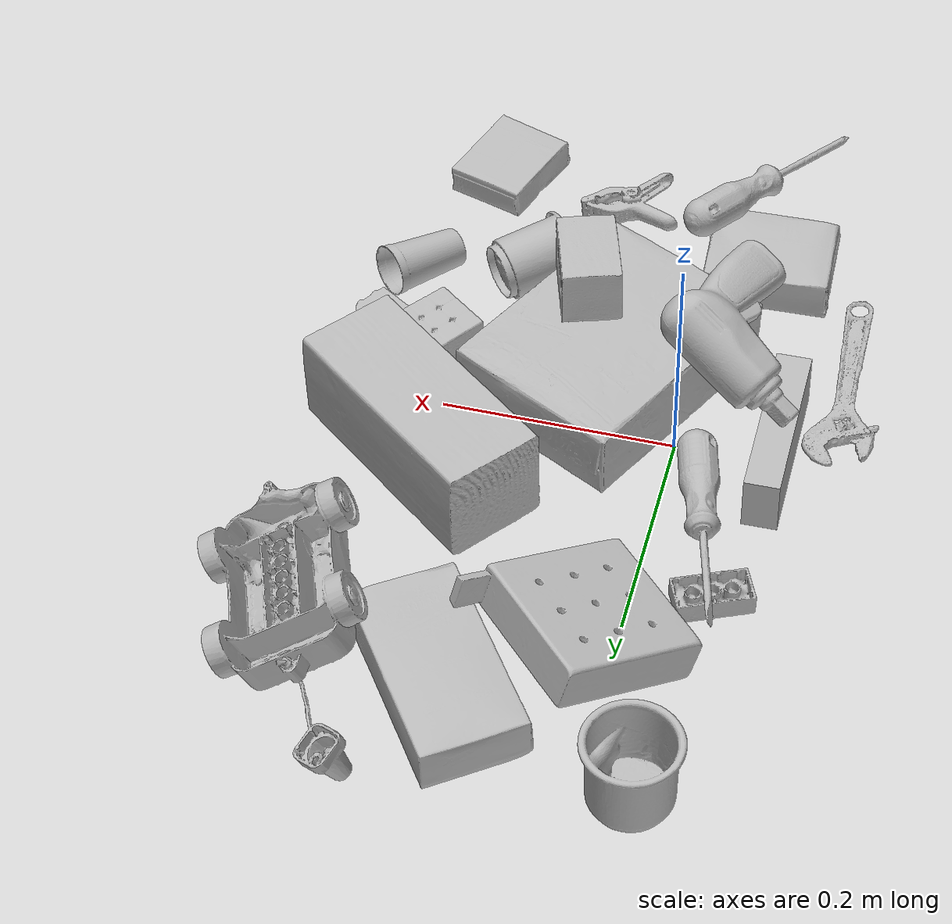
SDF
<sdf version="1.4">
  <world name="default">
    <light name="light1" type="point">
      <pose>0 0 1 0 0 0</pose>
      <diffuse>3 3 3 1</diffuse>
      <specular>3 3 3 1</specular>
    </light>
    <light name="light2" type="point">
      <pose>0 0.5 2 0 0 0</pose>
      <diffuse>1 1 1 1</diffuse>
      <specular>1 1 1 1</specular>
    </light>
    <light name="light3" type="point">
      <pose>0 0.5 2 0 0 0</pose>
      <diffuse>3 3 3 1</diffuse>
      <specular>3 3 3 1</specular>
    </light>
    <scene>
      <ambient>0.7 0.7 0.7</ambient>
    </scene>
    <model name="box21">
      <link name="link_box21">
        <collision name="default">
          <geometry>
            <mesh>
              <uri>model://cracker_box/collision_meshes/collision.obj</uri>
              <scale>1.0 1.0 1.0</scale>
            </mesh>
          </geometry>
          <surface>
            <friction>
              <ode>
                <mu>0.5</mu>
                <mu2>0.5</mu2>
              </ode>
            </friction>
          <contact>
        <ode>
            <max_vel>0</max_vel>
            <min_depth>0.0001</min_depth>
            <kp>1e8</kp>
        </ode>
    </contact></surface>
        </collision>
        <visual name="default">
          <geometry>
            <mesh>
              <uri>model://cracker_box/visual_meshes/visual.dae</uri>
              <scale>1.0 1.0 1.0</scale>
            </mesh>
          </geometry>
        </visual>
        <inertial>
          <mass>2.967785358428955</mass>
          <pose>0.0009464151808060706 0.00025434247800149024 -0.0017029535956680775 -0.0003162076618733006 -0.011106490531610344 0.00254679570085012</pose>
          <inertia>
            <ixx>0.0075487206</ixx>
            <iyy>0.012464421</iyy>
            <izz>0.017787872</izz>
            <ixy>0</ixy>
            <ixz>0</ixz>
            <iyz>0</iyz>
          </inertia>
        </inertial>
      </link>
      <pose>0.06975141912698746 -0.05771707743406296 0.03553275763988495 3.1371189800566577 -0.016562110906510403 1.1086057287064</pose>
    </model>
    <model name="box22">
      <link name="link_box22">
        <collision name="default">
          <geometry>
            <mesh>
              <uri>model://rubiks_cube/collision_meshes/collision.obj</uri>
              <scale>1.0 1.0 1.0</scale>
            </mesh>
          </geometry>
          <surface>
            <friction>
              <ode>
                <mu>0.5</mu>
                <mu2>0.5</mu2>
              </ode>
            </friction>
          <contact>
        <ode>
            <max_vel>0</max_vel>
            <min_depth>0.0001</min_depth>
            <kp>1e8</kp>
        </ode>
    </contact></surface>
        </collision>
        <visual name="default">
          <geometry>
            <mesh>
              <uri>model://rubiks_cube/visual_meshes/visual.dae</uri>
              <scale>1.0 1.0 1.0</scale>
            </mesh>
          </geometry>
        </visual>
        <inertial>
          <mass>0.2631562352180481</mass>
          <pose>2.6721041649580002e-05 5.2569666877388954e-05 -7.264316082000732e-06 -0.05467275409565722 -0.09814109117242276 -0.03445701547045584</pose>
          <inertia>
            <ixx>0.0001454115</ixx>
            <iyy>0.00014473335</iyy>
            <izz>0.00014661645</izz>
            <ixy>0</ixy>
            <ixz>0</ixz>
            <iyz>0</iyz>
          </inertia>
        </inertial>
      </link>
      <pose>0.2154398113489151 -0.04361136630177498 0.0292618777602911 1.25146319491607 1.5373783713494296 -2.519639451094781</pose>
    </model>
    <model name="box23">
      <link name="link_box23">
        <collision name="default">
          <geometry>
            <mesh>
              <uri>model://pudding_box/collision_meshes/collision.obj</uri>
              <scale>1.0 1.0 1.0</scale>
            </mesh>
          </geometry>
          <surface>
            <friction>
              <ode>
                <mu>0.5</mu>
                <mu2>0.5</mu2>
              </ode>
            </friction>
          <contact>
        <ode>
            <max_vel>0</max_vel>
            <min_depth>0.0001</min_depth>
            <kp>1e8</kp>
        </ode>
    </contact></surface>
        </collision>
        <visual name="default">
          <geometry>
            <mesh>
              <uri>model://pudding_box/visual_meshes/visual.dae</uri>
              <scale>1.0 1.0 1.0</scale>
            </mesh>
          </geometry>
        </visual>
        <inertial>
          <mass>0.41353368759155273</mass>
          <pose>0.0004894821904599667 0.0008067885646596551 -0.0005188827635720372 0.005213101814074476 -0.006603797777454713 0.020079821436089117</pose>
          <inertia>
            <ixx>0.0004674785</ixx>
            <iyy>0.00031452288</iyy>
            <izz>0.0006903542</izz>
            <ixy>0</ixy>
            <ixz>0</ixz>
            <iyz>0</iyz>
          </inertia>
        </inertial>
      </link>
      <pose>-0.03895643725991249 -0.2201014906167984 0.018686026334762573 -3.1415916652684324 6.23882875554944e-06 -1.52204694162889</pose>
    </model>
    <model name="cup1">
      <link name="link_cup1">
        <collision name="default">
          <geometry>
            <mesh>
              <uri>model://cup_small/collision_meshes/collision.obj</uri>
              <scale>1.0 1.0 1.0</scale>
            </mesh>
          </geometry>
          <surface>
            <friction>
              <ode>
                <mu>0.5</mu>
                <mu2>0.5</mu2>
              </ode>
            </friction>
          <contact>
        <ode>
            <max_vel>0</max_vel>
            <min_depth>0.0001</min_depth>
            <kp>1e8</kp>
        </ode>
    </contact></surface>
        </collision>
        <visual name="default">
          <geometry>
            <mesh>
              <uri>model://cup_small/visual_meshes/visual.dae</uri>
              <scale>1.0 1.0 1.0</scale>
            </mesh>
          </geometry>
        </visual>
        <inertial>
          <mass>0.02095564641058445</mass>
          <pose>0.00010482477955520153 -0.0003377848770469427 -0.01074282731860876 -0.011492722259696445 -0.015280529703091471 -0.5058449819350237</pose>
          <inertia>
            <ixx>1.2338362e-05</ixx>
            <iyy>1.240201e-05</iyy>
            <izz>5.5708097e-06</izz>
            <ixy>0</ixy>
            <ixz>0</ixz>
            <iyz>0</iyz>
          </inertia>
        </inertial>
      </link>
      <pose>0.25858309864997864 -0.14913620054721832 0.020075052976608276 1.4134645802751797 0.9854733107270283 2.2532551359875153</pose>
    </model>
    <model name="cup2">
      <link name="link_cup2">
        <collision name="default">
          <geometry>
            <mesh>
              <uri>model://c_cups/collision_meshes/collision.obj</uri>
              <scale>1.0 1.0 1.0</scale>
            </mesh>
          </geometry>
          <surface>
            <friction>
              <ode>
                <mu>0.5</mu>
                <mu2>0.5</mu2>
              </ode>
            </friction>
          <contact>
        <ode>
            <max_vel>0</max_vel>
            <min_depth>0.0001</min_depth>
            <kp>1e8</kp>
        </ode>
    </contact></surface>
        </collision>
        <visual name="default">
          <geometry>
            <mesh>
              <uri>model://c_cups/visual_meshes/visual.dae</uri>
              <scale>1.0 1.0 1.0</scale>
            </mesh>
          </geometry>
        </visual>
        <inertial>
          <mass>0.04905003309249878</mass>
          <pose>0.0007237255922518671 0.0020153908990323544 -0.0012750986497849226 0.30215813246853196 0.013461388587527759 -0.08771773533446486</pose>
          <inertia>
            <ixx>3.6477843e-05</ixx>
            <iyy>3.583322e-05</iyy>
            <izz>3.225985e-05</izz>
            <ixy>0</ixy>
            <ixz>0</ixz>
            <iyz>0</iyz>
          </inertia>
        </inertial>
      </link>
      <pose>0.1628287434577942 -0.1617611199617386 0.029974771663546562 -1.4865494016861716 -0.0033447693080828744 2.274249643022983</pose>
    </model>
    <model name="box11">
      <link name="link_box11">
        <collision name="default">
          <geometry>
            <mesh>
              <uri>model://sugar_box/collision_meshes/collision.obj</uri>
              <scale>1.0 1.0 1.0</scale>
            </mesh>
          </geometry>
          <surface>
            <friction>
              <ode>
                <mu>0.5</mu>
                <mu2>0.5</mu2>
              </ode>
            </friction>
          <contact>
        <ode>
            <max_vel>0</max_vel>
            <min_depth>0.0001</min_depth>
            <kp>1e8</kp>
        </ode>
    </contact></surface>
        </collision>
        <visual name="default">
          <geometry>
            <mesh>
              <uri>model://sugar_box/visual_meshes/visual.dae</uri>
              <scale>1.0 1.0 1.0</scale>
            </mesh>
          </geometry>
        </visual>
        <inertial>
          <mass>0.9405714869499207</mass>
          <pose>0.0010343727190047503 3.849109634757042e-05 -0.0003636480832938105 -0.00040462618385709627 0.0010506635220579009 0.0026153790218148127</pose>
          <inertia>
            <ixx>0.0007836817</ixx>
            <iyy>0.0025330195</iyy>
            <izz>0.0030323272</izz>
            <ixy>0</ixy>
            <ixz>0</ixz>
            <iyz>0</iyz>
          </inertia>
        </inertial>
      </link>
      <pose>0.12369236350059509 0.29420286417007446 0.02279862016439438 0.0007694120541596496 -0.023430865247369485 2.1721467317502565</pose>
    </model>
    <model name="box12">
      <link name="link_box12">
        <collision name="default">
          <geometry>
            <mesh>
              <uri>model://jenga/collision_meshes/collision.obj</uri>
              <scale>1.0 1.0 1.0</scale>
            </mesh>
          </geometry>
          <surface>
            <friction>
              <ode>
                <mu>0.5</mu>
                <mu2>0.5</mu2>
              </ode>
            </friction>
          <contact>
        <ode>
            <max_vel>0</max_vel>
            <min_depth>0.0001</min_depth>
            <kp>1e8</kp>
        </ode>
    </contact></surface>
        </collision>
        <visual name="default">
          <geometry>
            <mesh>
              <uri>model://jenga/visual_meshes/visual.dae</uri>
              <scale>1.0 1.0 1.0</scale>
            </mesh>
          </geometry>
        </visual>
        <inertial>
          <mass>0.2285791039466858</mass>
          <pose>-2.502855807051674e-07 -0.00010250010382151231 -4.0923405322246253e-05 0.0 -7.342155186052628e-07 0.0</pose>
          <inertia>
            <ixx>6.3253385e-05</ixx>
            <iyy>0.00042860323</iyy>
            <izz>0.00045757034</izz>
            <ixy>0</ixy>
            <ixz>0</ixz>
            <iyz>0</iyz>
          </inertia>
        </inertial>
      </link>
      <pose>-0.08444521576166153 -0.005144641734659672 0.024702012538909912 1.5774807488874019 -5.5982210500392e-07 1.5758949070483297</pose>
    </model>
    <model name="box13">
      <link name="link_box13">
        <collision name="default">
          <geometry>
            <mesh>
              <uri>model://wood_block/collision_meshes/collision.obj</uri>
              <scale>1.0 1.0 1.0</scale>
            </mesh>
          </geometry>
          <surface>
            <friction>
              <ode>
                <mu>0.5</mu>
                <mu2>0.5</mu2>
              </ode>
            </friction>
          <contact>
        <ode>
            <max_vel>0</max_vel>
            <min_depth>0.0001</min_depth>
            <kp>1e8</kp>
        </ode>
    </contact></surface>
        </collision>
        <visual name="default">
          <geometry>
            <mesh>
              <uri>model://wood_block/visual_meshes/visual.dae</uri>
              <scale>1.0 1.0 1.0</scale>
            </mesh>
          </geometry>
        </visual>
        <inertial>
          <mass>1.608048677444458</mass>
          <pose>-5.813315056002466e-06 -0.000570809468626976 0.0002640858292579651 -0.05220975529066727 -0.005192695547513155 -0.006861377927637377</pose>
          <inertia>
            <ixx>0.002151813</ixx>
            <iyy>0.006797577</iyy>
            <izz>0.0067721503</izz>
            <ixy>0</ixy>
            <ixz>0</ixz>
            <iyz>0</iyz>
          </inertia>
        </inertial>
      </link>
      <pose>0.20067842304706573 0.06538771837949753 0.04570065438747406 1.5681308273434404 -0.006938944006506552 2.478812984694253</pose>
    </model>
    <model name="box14">
      <link name="link_box14">
        <collision name="default">
          <geometry>
            <mesh>
              <uri>model://gelatin_box/collision_meshes/collision.obj</uri>
              <scale>1.0 1.0 1.0</scale>
            </mesh>
          </geometry>
          <surface>
            <friction>
              <ode>
                <mu>0.5</mu>
                <mu2>0.5</mu2>
              </ode>
            </friction>
          <contact>
        <ode>
            <max_vel>0</max_vel>
            <min_depth>0.0001</min_depth>
            <kp>1e8</kp>
        </ode>
    </contact></surface>
        </collision>
        <visual name="default">
          <geometry>
            <mesh>
              <uri>model://gelatin_box/visual_meshes/visual.dae</uri>
              <scale>1.0 1.0 1.0</scale>
            </mesh>
          </geometry>
        </visual>
        <inertial>
          <mass>0.228233203291893</mass>
          <pose>0.0004319618456065655 0.00011156871914863586 -0.0003640321083366871 -0.0010503721031013481 -0.004755817754301117 0.016440566922732165</pose>
          <inertia>
            <ixx>0.000161114</ixx>
            <iyy>0.0001150829</iyy>
            <izz>0.0002452514</izz>
            <ixy>0</ixy>
            <ixz>0</ixz>
            <iyz>0</iyz>
          </inertia>
        </inertial>
      </link>
      <pose>0.21527886390686035 -0.2921941578388214 0.014580639079213142 -3.1258657170764774 -0.025719255565556466 2.8136845531879864</pose>
    </model>
    <model name="cup15">
      <link name="link_cup15">
        <collision name="default">
          <geometry>
            <mesh>
              <uri>model://f_cups/collision_meshes/collision.obj</uri>
              <scale>1.0 1.0 1.0</scale>
            </mesh>
          </geometry>
          <surface>
            <friction>
              <ode>
                <mu>0.5</mu>
                <mu2>0.5</mu2>
              </ode>
            </friction>
          <contact>
        <ode>
            <max_vel>0</max_vel>
            <min_depth>0.0001</min_depth>
            <kp>1e8</kp>
        </ode>
    </contact></surface>
        </collision>
        <visual name="default">
          <geometry>
            <mesh>
              <uri>model://f_cups/visual_meshes/visual.dae</uri>
              <scale>1.0 1.0 1.0</scale>
            </mesh>
          </geometry>
        </visual>
        <inertial>
          <mass>0.05267045274376869</mass>
          <pose>-0.003171468386426568 -0.0006240073125809431 -0.003655537962913513 0.7862325736201227 -0.2607934836260618 -0.18237270236977254</pose>
          <inertia>
            <ixx>4.9511644e-05</ixx>
            <iyy>5.193826e-05</iyy>
            <izz>5.4069198e-05</izz>
            <ixy>0</ixy>
            <ixz>0</ixz>
            <iyz>0</iyz>
          </inertia>
        </inertial>
      </link>
      <pose>-0.04269453510642052 0.3596073389053345 0.03630601987242699 8.218082234268862e-08 3.7504615025054856e-07 2.828220909529068</pose>
    </model>
    <model name="toy1">
      <link name="link_toy1">
        <collision name="default">
          <geometry>
            <mesh>
              <uri>model://g_lego_duplo/collision_meshes/collision.obj</uri>
              <scale>1.0 1.0 1.0</scale>
            </mesh>
          </geometry>
          <surface>
            <friction>
              <ode>
                <mu>0.5</mu>
                <mu2>0.5</mu2>
              </ode>
            </friction>
          <contact>
        <ode>
            <max_vel>0</max_vel>
            <min_depth>0.0001</min_depth>
            <kp>1e8</kp>
        </ode>
    </contact></surface>
        </collision>
        <visual name="default">
          <geometry>
            <mesh>
              <uri>model://g_lego_duplo/visual_meshes/visual.dae</uri>
              <scale>1.0 1.0 1.0</scale>
            </mesh>
          </geometry>
        </visual>
        <inertial>
          <mass>0.5557854771614075</mass>
          <pose>-0.050047677010297775 0.0017554635414853692 0.0038806761149317026 0.01096300832625367 0.038108254431045284 -0.0965302354071939</pose>
          <inertia>
            <ixx>0.0008053398</ixx>
            <iyy>0.0024348022</iyy>
            <izz>0.003046027</izz>
            <ixy>0</ixy>
            <ixz>0</ixz>
            <iyz>0</iyz>
          </inertia>
        </inertial>
      </link>
      <pose>0.2341281771659851 0.3061635494232178 0.043272972106933594 -2.6720199112340857 -1.1936489976314808e-05 1.9299484704240357</pose>
    </model>
    <model name="toy2">
      <link name="link_toy2">
        <collision name="default">
          <geometry>
            <mesh>
              <uri>model://b_toy_airplane/collision_meshes/collision.obj</uri>
              <scale>1.0 1.0 1.0</scale>
            </mesh>
          </geometry>
          <surface>
            <friction>
              <ode>
                <mu>0.5</mu>
                <mu2>0.5</mu2>
              </ode>
            </friction>
          <contact>
        <ode>
            <max_vel>0</max_vel>
            <min_depth>0.0001</min_depth>
            <kp>1e8</kp>
        </ode>
    </contact></surface>
        </collision>
        <visual name="default">
          <geometry>
            <mesh>
              <uri>model://b_toy_airplane/visual_meshes/visual.dae</uri>
              <scale>1.0 1.0 1.0</scale>
            </mesh>
          </geometry>
        </visual>
        <inertial>
          <mass>0.5134223699569702</mass>
          <pose>0.00508136348798871 0.004015584941953421 0.009543065913021564 -0.0400181167848636 -0.04022184003740235 -0.5601502230799963</pose>
          <inertia>
            <ixx>0.00095317804</ixx>
            <iyy>0.00038099466</iyy>
            <izz>0.0011858484</izz>
            <ixy>0</ixy>
            <ixz>0</ixz>
            <iyz>0</iyz>
          </inertia>
        </inertial>
      </link>
      <pose>-0.030978869646787643 -0.06403281539678574 0.1003599688410759 2.9836905375886893 0.4096653527900015 2.689325971332117</pose>
    </model>
    <model name="toy3">
      <link name="link_toy3">
        <collision name="default">
          <geometry>
            <mesh>
              <uri>model://foam_brick/collision_meshes/collision.obj</uri>
              <scale>1.0 1.0 1.0</scale>
            </mesh>
          </geometry>
          <surface>
            <friction>
              <ode>
                <mu>0.5</mu>
                <mu2>0.5</mu2>
              </ode>
            </friction>
          <contact>
        <ode>
            <max_vel>0</max_vel>
            <min_depth>0.0001</min_depth>
            <kp>1e8</kp>
        </ode>
    </contact></surface>
        </collision>
        <visual name="default">
          <geometry>
            <mesh>
              <uri>model://foam_brick/visual_meshes/visual.dae</uri>
              <scale>1.0 1.0 1.0</scale>
            </mesh>
          </geometry>
        </visual>
        <inertial>
          <mass>0.10737738013267517</mass>
          <pose>-0.0002522472059354186 0.00034584314562380314 -0.0002532101352699101 -0.29401713280371045 0.01727443708188723 -0.0007449863066790336</pose>
          <inertia>
            <ixx>4.6904443e-05</ixx>
            <iyy>7.488536e-05</iyy>
            <izz>7.583706e-05</izz>
            <ixy>0</ixy>
            <ixz>0</ixz>
            <iyz>0</iyz>
          </inertia>
        </inertial>
      </link>
      <pose>0.0972473993897438 -0.09426780045032501 0.09712384641170502 -1.5737637785590686 0.011226631837081393 -1.266193689155993</pose>
    </model>
    <model name="toy4">
      <link name="link_toy4">
        <collision name="default">
          <geometry>
            <mesh>
              <uri>model://c_lego_duplo/collision_meshes/collision.obj</uri>
              <scale>1.0 1.0 1.0</scale>
            </mesh>
          </geometry>
          <surface>
            <friction>
              <ode>
                <mu>0.5</mu>
                <mu2>0.5</mu2>
              </ode>
            </friction>
          <contact>
        <ode>
            <max_vel>0</max_vel>
            <min_depth>0.0001</min_depth>
            <kp>1e8</kp>
        </ode>
    </contact></surface>
        </collision>
        <visual name="default">
          <geometry>
            <mesh>
              <uri>model://c_lego_duplo/visual_meshes/visual.dae</uri>
              <scale>1.0 1.0 1.0</scale>
            </mesh>
          </geometry>
        </visual>
        <inertial>
          <mass>0.0418582409620285</mass>
          <pose>0.00031645974377170205 0.00019464627257548273 0.0010453157592564821 -0.011520806412656213 0.005900100982121691 0.03110035028309464</pose>
          <inertia>
            <ixx>1.6107831e-05</ixx>
            <iyy>5.145423e-06</iyy>
            <izz>1.8823655e-05</izz>
            <ixy>0</ixy>
            <ixz>0</ixz>
            <iyz>0</iyz>
          </inertia>
        </inertial>
      </link>
      <pose>-0.06457943469285965 0.1619309037923813 0.011918081901967525 -3.1350023222471934 -4.297234769577485e-05 -1.1284545181305163</pose>
    </model>
    <model name="toy5">
      <link name="link_toy5">
        <collision name="default">
          <geometry>
            <mesh>
              <uri>model://nine_hole_peg_test/collision_meshes/collision.obj</uri>
              <scale>1.0 1.0 1.0</scale>
            </mesh>
          </geometry>
          <surface>
            <friction>
              <ode>
                <mu>0.5</mu>
                <mu2>0.5</mu2>
              </ode>
            </friction>
          <contact>
        <ode>
            <max_vel>0</max_vel>
            <min_depth>0.0001</min_depth>
            <kp>1e8</kp>
        </ode>
    </contact></surface>
        </collision>
        <visual name="default">
          <geometry>
            <mesh>
              <uri>model://nine_hole_peg_test/visual_meshes/visual.dae</uri>
              <scale>1.0 1.0 1.0</scale>
            </mesh>
          </geometry>
        </visual>
        <inertial>
          <mass>0.44585999846458435</mass>
          <pose>-0.004617387428879738 -0.009647615253925323 2.6460689696250483e-05 -0.001466677754783098 0.0007194209279192062 -0.6342398490080472</pose>
          <inertia>
            <ixx>0.0006971755</ixx>
            <iyy>0.0006509454</iyy>
            <izz>0.0012216569</izz>
            <ixy>0</ixy>
            <ixz>0</ixz>
            <iyz>0</iyz>
          </inertia>
        </inertial>
      </link>
      <pose>0.03106047213077545 0.2332858443260193 0.041857004165649414 0.32031587894505825 -0.002495845817789013 -0.790443237545026</pose>
    </model>
    <model name="toy6">
      <link name="link_toy6">
        <collision name="default">
          <geometry>
            <mesh>
              <uri>model://d_lego_duplo/collision_meshes/collision.obj</uri>
              <scale>1.0 1.0 1.0</scale>
            </mesh>
          </geometry>
          <surface>
            <friction>
              <ode>
                <mu>0.5</mu>
                <mu2>0.5</mu2>
              </ode>
            </friction>
          <contact>
        <ode>
            <max_vel>0</max_vel>
            <min_depth>0.0001</min_depth>
            <kp>1e8</kp>
        </ode>
    </contact></surface>
        </collision>
        <visual name="default">
          <geometry>
            <mesh>
              <uri>model://d_lego_duplo/visual_meshes/visual.dae</uri>
              <scale>1.0 1.0 1.0</scale>
            </mesh>
          </geometry>
        </visual>
        <inertial>
          <mass>0.03287249803543091</mass>
          <pose>0.00283056334592402 0.0001636616507312283 0.000858980929479003 0.08010843587180921 -0.38355193616427774 0.0010296778305230027</pose>
          <inertia>
            <ixx>6.363631e-06</ixx>
            <iyy>9.031719e-06</iyy>
            <izz>8.709827e-06</izz>
            <ixy>0</ixy>
            <ixz>0</ixz>
            <iyz>0</iyz>
          </inertia>
        </inertial>
      </link>
      <pose>0.27702635526657104 -0.06579620391130447 0.016380637884140015 -1.5707966202573103 -0.008044347413581123 -2.14211533758872</pose>
    </model>
    <model name="hardware1">
      <link name="link_hardware1">
        <collision name="default">
          <geometry>
            <mesh>
              <uri>model://phillips_screwdriver/collision_meshes/collision.obj</uri>
              <scale>1.0 1.0 1.0</scale>
            </mesh>
          </geometry>
          <surface>
            <friction>
              <ode>
                <mu>0.5</mu>
                <mu2>0.5</mu2>
              </ode>
            </friction>
          <contact>
        <ode>
            <max_vel>0</max_vel>
            <min_depth>0.0001</min_depth>
            <kp>1e8</kp>
        </ode>
    </contact></surface>
        </collision>
        <visual name="default">
          <geometry>
            <mesh>
              <uri>model://phillips_screwdriver/visual_meshes/visual.dae</uri>
              <scale>1.0 1.0 1.0</scale>
            </mesh>
          </geometry>
        </visual>
        <inertial>
          <mass>0.05929635465145111</mass>
          <pose>-0.04777182266116142 0.0010362300090491772 -0.00045555492397397757 -0.15720933335137202 0.005850991845378533 -0.002156742438797471</pose>
          <inertia>
            <ixx>6.9667135e-06</ixx>
            <iyy>8.735042e-05</iyy>
            <izz>8.742465e-05</izz>
            <ixy>0</ixy>
            <ixz>0</ixz>
            <iyz>0</iyz>
          </inertia>
        </inertial>
      </link>
      <pose>-0.021716086193919182 -0.29323527216911316 0.04559896141290665 2.0824098557525965 0.14903478061571276 -2.1202304354036428</pose>
    </model>
    <model name="hardware2">
      <link name="link_hardware2">
        <collision name="default">
          <geometry>
            <mesh>
              <uri>model://flat_screwdriver/collision_meshes/collision.obj</uri>
              <scale>1.0 1.0 1.0</scale>
            </mesh>
          </geometry>
          <surface>
            <friction>
              <ode>
                <mu>0.5</mu>
                <mu2>0.5</mu2>
              </ode>
            </friction>
          <contact>
        <ode>
            <max_vel>0</max_vel>
            <min_depth>0.0001</min_depth>
            <kp>1e8</kp>
        </ode>
    </contact></surface>
        </collision>
        <visual name="default">
          <geometry>
            <mesh>
              <uri>model://flat_screwdriver/visual_meshes/visual.dae</uri>
              <scale>1.0 1.0 1.0</scale>
            </mesh>
          </geometry>
        </visual>
        <inertial>
          <mass>0.08023945242166519</mass>
          <pose>-0.0489187017083168 -0.0006576800369657576 -0.000614091579336673 -0.561358306335632 -0.0032337267228942767 0.006982275729110292</pose>
          <inertia>
            <ixx>9.4802335e-06</ixx>
            <iyy>0.00012035375</iyy>
            <izz>0.00012029803</izz>
            <ixy>0</ixy>
            <ixz>0</ixz>
            <iyz>0</iyz>
          </inertia>
        </inertial>
      </link>
      <pose>-0.044185832142829895 0.10033228993415833 0.02357150986790657 -1.046707091134368 -0.07501793143267382 1.8145051524343947</pose>
    </model>
    <model name="hardware3">
      <link name="link_hardware3">
        <collision name="default">
          <geometry>
            <mesh>
              <uri>model://medium_clamp/collision_meshes/collision.obj</uri>
              <scale>1.0 1.0 1.0</scale>
            </mesh>
          </geometry>
          <surface>
            <friction>
              <ode>
                <mu>0.5</mu>
                <mu2>0.5</mu2>
              </ode>
            </friction>
          <contact>
        <ode>
            <max_vel>0</max_vel>
            <min_depth>0.0001</min_depth>
            <kp>1e8</kp>
        </ode>
    </contact></surface>
        </collision>
        <visual name="default">
          <geometry>
            <mesh>
              <uri>model://medium_clamp/visual_meshes/visual.dae</uri>
              <scale>1.0 1.0 1.0</scale>
            </mesh>
          </geometry>
        </visual>
        <inertial>
          <mass>0.025976430624723434</mass>
          <pose>0.0053909942507743835 0.0003953239065594971 -0.0001222159480676055 -0.001226907020768324 0.0025845009771016812 0.038207788380880015</pose>
          <inertia>
            <ixx>7.0769133e-06</ixx>
            <iyy>1.02989125e-05</iyy>
            <izz>1.5863408e-05</izz>
            <ixy>0</ixy>
            <ixz>0</ixz>
            <iyz>0</iyz>
          </inertia>
        </inertial>
      </link>
      <pose>0.0965520441532135 -0.2694392800331116 0.013314614072442055 -3.019545350294224 0.07747067093767028 0.2695435689818589</pose>
    </model>
    <model name="hardware4">
      <link name="link_hardware4">
        <collision name="default">
          <geometry>
            <mesh>
              <uri>model://adjustable_wrench/collision_meshes/collision.obj</uri>
              <scale>1.0 1.0 1.0</scale>
            </mesh>
          </geometry>
          <surface>
            <friction>
              <ode>
                <mu>0.5</mu>
                <mu2>0.5</mu2>
              </ode>
            </friction>
          <contact>
        <ode>
            <max_vel>0</max_vel>
            <min_depth>0.0001</min_depth>
            <kp>1e8</kp>
        </ode>
    </contact></surface>
        </collision>
        <visual name="default">
          <geometry>
            <mesh>
              <uri>model://adjustable_wrench/visual_meshes/visual.dae</uri>
              <scale>1.0 1.0 1.0</scale>
            </mesh>
          </geometry>
        </visual>
        <inertial>
          <mass>0.023418840020895004</mass>
          <pose>0.03740980848670006 -0.00289688678458333 -0.0011149229248985648 -0.014473354604289867 0.006656022134877207 -0.010954199158636425</pose>
          <inertia>
            <ixx>4.793005e-06</ixx>
            <iyy>5.609652e-05</iyy>
            <izz>6.0634928e-05</izz>
            <ixy>0</ixy>
            <ixz>0</ixz>
            <iyz>0</iyz>
          </inertia>
        </inertial>
      </link>
      <pose>-0.13170360028743744 -0.10094479471445084 0.0061250408180058 0.04675925836418978 -0.02927055543357269 1.6082199735416047</pose>
    </model>
  <physics type="ode">
      <max_contacts>50</max_contacts>
      <ode>
        <solver>
          <type>quick</type>
          <iters>75</iters>
        </solver>
        <constraints>
          <contact_max_correcting_vel>0</contact_max_correcting_vel>
          <contact_surface_layer>0</contact_surface_layer>
        </constraints>
      </ode>
    </physics></world>
</sdf>
